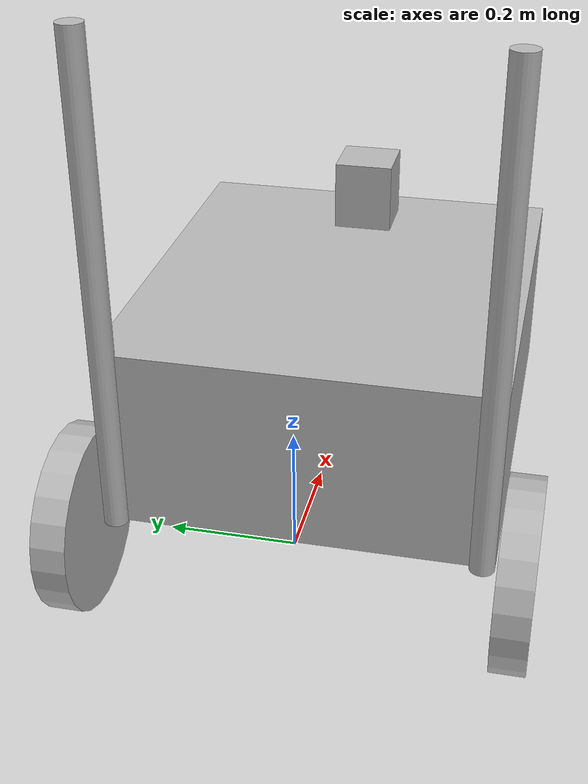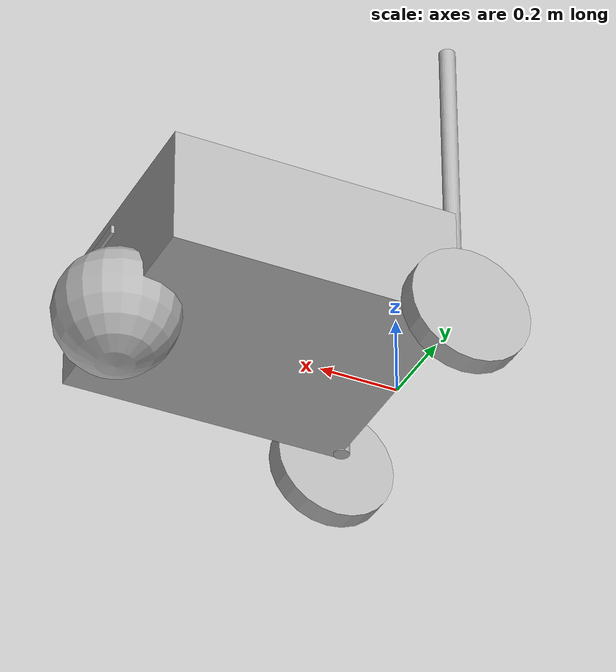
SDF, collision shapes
<?xml version='1.0'?>
<sdf version='1.7'>
  <model name='blindenhund'>
    <link name='base_footprint'>
      <self_collide>0</self_collide>
      <inertial>
        <pose>0 0 0 0 -0 0</pose>
        <inertia>
          <ixx>1</ixx>
          <ixy>0</ixy>
          <ixz>0</ixz>
          <iyy>1</iyy>
          <iyz>0</iyz>
          <izz>1</izz>
        </inertia>
        <mass>0</mass>
      </inertial>
      <enable_wind>0</enable_wind>
      <kinematic>0</kinematic>
      <pose>0 0 0 0 -0 0</pose>
      <gravity>1</gravity>
    </link>

    <link name='base_link'>
      <inertial>
        <pose>0.3576 0 0.3024 0 0 0</pose>
        <mass>8</mass>
        <inertia>
          <ixx>0.01</ixx>
          <ixy>0</ixy>
          <ixz>0</ixz>
          <iyy>0.1</iyy>
          <iyz>0</iyz>
          <izz>0.1</izz>
        </inertia>
      </inertial>
      <self_collide>0</self_collide>
      <enable_wind>0</enable_wind>
      <kinematic>0</kinematic>
      <pose>0.3576 0 0.1524 0 -0 0</pose>
      <gravity>1</gravity>
      <visual name='base_visual'>
        <geometry>
          <box>
            <size>0.7152 0.628 0.30</size>
          </box>
        </geometry>
      </visual>
      <collision name='base_collision'>
        <max_contacts>10</max_contacts>
        <pose>0 0 0 0 0 0</pose>
        <geometry>
          <box>
            <size>0.7152 0.628 0.30</size>
          </box>
        </geometry>
      </collision>
    </link>

   <link name='left_wheel'>
      <inertial>
        <pose>0 0.3493 0 -1.5707 0 0</pose>
        <mass>0.5</mass>
        <inertia>
          <ixx>0.145833</ixx>
          <ixy>0</ixy>
          <ixz>0</ixz>
          <iyy>0.145833</iyy>
          <iyz>0</iyz>
          <izz>0.125</izz>
        </inertia>
      </inertial>
      <self_collide>0</self_collide>
      <enable_wind>0</enable_wind>
      <kinematic>0</kinematic>
      <pose>0 0 0 0 0 0</pose>
      <visual name='visual'>
        <pose>0 0.3493 0 -1.5707 0 0</pose>
        <geometry>
          <cylinder>
            <radius>0.1524</radius>
            <length>0.056</length>
          </cylinder>
        </geometry>
      </visual>
      <collision name='collision'>
        <pose>0 0.3493 0 -1.5707 0 0</pose>
        <max_contacts>10</max_contacts>
        <geometry>
          <cylinder>
            <radius>0.1524</radius>
            <length>0.056</length>
          </cylinder>
        </geometry>
        <surface>
          <friction>
            <ode>
              <mu>1</mu>
              <mu2>1</mu2>
              <slip1>0</slip1>
              <slip2>0</slip2>
            </ode>
          </friction>
          <contact>
            <ode>
              <soft_cfm>0</soft_cfm>
              <soft_erp>0.2</soft_erp>
              <kp>1e+13</kp>
              <kd>1</kd>
              <max_vel>0.01</max_vel>
              <min_depth>0.01</min_depth>
            </ode>
          </contact>
        </surface>
      </collision>
    </link>

    <link name='right_wheel'>
      <inertial>
        <pose>0 -0.3493 0 -1.5707 0 0</pose>
        <mass>0.5</mass>
        <inertia>
          <ixx>0.145833</ixx>
          <ixy>0</ixy>
          <ixz>0</ixz>
          <iyy>0.145833</iyy>
          <iyz>0</iyz>
          <izz>0.125</izz>
        </inertia>
      </inertial>
      <self_collide>0</self_collide>
      <enable_wind>0</enable_wind>
      <kinematic>0</kinematic>
      <pose>0 0 0 0 -0 0</pose>
      <visual name='visual'>
        <pose>0 -0.3493 0 -1.5707 0 0</pose>
        <geometry>
          <cylinder>
            <radius>0.1524</radius>
            <length>0.056</length>
          </cylinder>
        </geometry>
      </visual>
      <collision name='collision'>
        <pose>0 -0.3493 0 -1.5707 0 0</pose>
        <max_contacts>10</max_contacts>
        <geometry>
          <cylinder>
            <radius>0.1524</radius>
            <length>0.056</length>
          </cylinder>
        </geometry>
        <surface>
          <friction>
            <ode>
              <mu>1</mu>
              <mu2>1</mu2>
              <slip1>0</slip1>
              <slip2>0</slip2>
            </ode>
          </friction>
          <contact>
            <ode>
              <soft_cfm>0</soft_cfm>
              <soft_erp>0.2</soft_erp>
              <kp>1e+13</kp>
              <kd>1</kd>
              <max_vel>0.01</max_vel>
              <min_depth>0.01</min_depth>
            </ode>
          </contact>
        </surface>
      </collision>
    </link>

    <link name='left_grip'>
      <pose>0 0.294 0.3988 0 0 0</pose>
      <inertial>
        <mass>0.2</mass>
        <inertia>
          <ixx>0.145833</ixx>
          <ixy>0</ixy>
          <ixz>0</ixz>
          <iyy>0.145833</iyy>
          <iyz>0</iyz>
          <izz>0.125</izz>
        </inertia>
        <pose>0 0 0 0 -0 0</pose>
      </inertial>
      <visual name='visual'>
        <geometry>
          <cylinder>
            <radius>0.02</radius>
            <length>0.7976</length>
          </cylinder>
        </geometry>
        <pose>0 0 0 0 -0 0</pose>
      </visual>
      <collision name='collision'>
        <max_contacts>10</max_contacts>
        <pose>0 0 0 0 -0 0</pose>
        <geometry>
          <cylinder>
            <radius>0.02</radius>
            <length>0.7976</length>
          </cylinder>
        </geometry>
      </collision>
    </link>

    <link name='right_grip'>
      <pose>0 -0.294 0.3988 0 0 0</pose>
      <inertial>
        <mass>0.2</mass>
        <inertia>
          <ixx>0.145833</ixx>
          <ixy>0</ixy>
          <ixz>0</ixz>
          <iyy>0.145833</iyy>
          <iyz>0</iyz>
          <izz>0.125</izz>
        </inertia>
        <pose>0 0 0 0 -0 0</pose>
      </inertial>
      <visual name='visual'>
        <geometry>
          <cylinder>
            <radius>0.02</radius>
            <length>0.7976</length>
          </cylinder>
        </geometry>
        <pose>0 0 0 0 -0 0</pose>
      </visual>
      <collision name='collision'>
        <max_contacts>10</max_contacts>
        <pose>0 0 0 0 -0 0</pose>
        <geometry>
          <cylinder>
            <radius>0.02</radius>
            <length>0.7976</length>
          </cylinder>
        </geometry>
      </collision>
    </link>

    <link name='imu_link'>
      <sensor name='tb3_imu' type='imu'>
        <always_on>true</always_on>
        <update_rate>200</update_rate>
        <imu>
          <angular_velocity>
            <x>
              <noise type='gaussian'>
                <mean>0.0</mean>
                <stddev>2e-4</stddev>
              </noise>
            </x>
            <y>
              <noise type='gaussian'>
                <mean>0.0</mean>
                <stddev>2e-4</stddev>
              </noise>
            </y>
            <z>
              <noise type='gaussian'>
                <mean>0.0</mean>
                <stddev>2e-4</stddev>
              </noise>
            </z>
          </angular_velocity>
          <linear_acceleration>
            <x>
              <noise type='gaussian'>
                <mean>0.0</mean>
                <stddev>1.7e-2</stddev>
              </noise>
            </x>
            <y>
              <noise type='gaussian'>
                <mean>0.0</mean>
                <stddev>1.7e-2</stddev>
              </noise>
            </y>
            <z>
              <noise type='gaussian'>
                <mean>0.0</mean>
                <stddev>1.7e-2</stddev>
              </noise>
            </z>
          </linear_acceleration>
        </imu>
        <plugin name='blindenhund_imu' filename='libgazebo_ros_imu_sensor.so'>
          <ros>
            <remapping>~/out:=imu</remapping>
          </ros>
        </plugin>
      </sensor>
      <self_collide>0</self_collide>
      <inertial>
        <pose>0 0 0 0 -0 0</pose>
        <inertia>
          <ixx>1</ixx>
          <ixy>0</ixy>
          <ixz>0</ixz>
          <iyy>1</iyy>
          <iyz>0</iyz>
          <izz>1</izz>
        </inertia>
        <mass>0.001</mass>
      </inertial>
      <enable_wind>0</enable_wind>
      <kinematic>0</kinematic>
      <pose>0 0 0 0 -0 0</pose>
    </link>

    <link name='caster'>
      <pose>0.7152 0 0 0 0 0</pose>
      <inertial>
        <mass>2</mass>
        <inertia>
          <ixx>0.1</ixx>
          <ixy>0</ixy>
          <ixz>0</ixz>
          <iyy>0.1</iyy>
          <iyz>0</iyz>
          <izz>0.1</izz>
        </inertia>
        <pose>0 0 0 0 -0 0</pose>
      </inertial>
      <visual name='visual'>
        <geometry>
          <sphere>
            <radius>0.1524</radius>
          </sphere>
        </geometry>
        <pose>0 0 0 0 -0 0</pose>
      </visual>
      <collision name='collision'>
        <max_contacts>10</max_contacts>
        <pose>0 0 0 0 -0 0</pose>
        <geometry>
          <sphere>
            <radius>0.1524</radius>
          </sphere>
        </geometry>
        <surface>
          <contact>
            <ode>
              <soft_cfm>0</soft_cfm>
              <soft_erp>0.2</soft_erp>
              <kp>1e+5</kp>
              <kd>1</kd>
              <max_vel>0.01</max_vel>
              <min_depth>0.001</min_depth>
            </ode>
          </contact>
        </surface>
      </collision>
    </link>

    <link name='camera_link'>
      <inertial>
        <pose>0.75 -0.065 0.2 0 -0 0</pose>
        <inertia>
          <ixx>0.001</ixx>
          <ixy>0.000</ixy>
          <ixz>0.000</ixz>
          <iyy>0.001</iyy>
          <iyz>0.000</iyz>
          <izz>0.001</izz>
        </inertia>
        <mass>0.035</mass>
      </inertial>
      <pose>0.75 -0.065 0.2 0 -0 0</pose>
      <sensor name='intel_realsense_r200_depth' type='depth'>
        <always_on>1</always_on>
        <update_rate>5</update_rate>
        <pose>0.064 -0.047 0.2 0 0 0</pose>
        <camera name='realsense_depth_camera'>
          <horizontal_fov>1.047</horizontal_fov>
          <image>
            <width>320</width>
            <height>240</height>
          </image>
          <clip>
            <near>0.1</near>
            <far>100</far>
          </clip>
        </camera>
        <plugin name='intel_realsense_r200_depth_driver' filename='libgazebo_ros_camera.so'>
          <ros>
          </ros>
          <camera_name>intel_realsense_r200_depth</camera_name>
          <frame_name>camera_depth_frame</frame_name>
          <hack_baseline>0.07</hack_baseline>
          <min_depth>0.001</min_depth>
          <max_depth>5.0</max_depth>
        </plugin>
      </sensor>
      <pose>0.069 -0.047 0.2 0 -0 0</pose>
      <self_collide>0</self_collide>
      <enable_wind>0</enable_wind>
      <kinematic>0</kinematic>
      <gravity>1</gravity>
      <collision name='collision'>
        <pose>0 0.047 -0.005 0 0 0</pose>
        <geometry>
          <box>
            <size>0.008 0.130 0.022</size>
          </box>
        </geometry>
      </collision>
      <pose>0.069 -0.047 0.2 0 0 0</pose>
    </link>

    <link name='base_scan'>
      <inertial>
        <pose>0.6 0 0.32 0 -0 0</pose>
        <mass>0.2</mass>
        <inertia>
          <ixx>0.001</ixx>
          <ixy>0</ixy>
          <ixz>0</ixz>
          <iyy>0.01</iyy>
          <iyz>0</iyz>
          <izz>0.01</izz>
        </inertia>
      </inertial>
      <visual name='lidar_sensor_visual'>
        <geometry>
          <mesh>
            <uri>model://blindenhund/meshes/lds.dae</uri>
            <scale>0.001 0.001 0.001</scale>
          </mesh>
        </geometry>
        <pose>0 0 0 0 -0 0</pose>
      </visual>
      <collision name='lidar_sensor_collision'>
        <max_contacts>10</max_contacts>
        <pose>0 0 0 0 -0 0</pose>
        <geometry>
          <box>
            <size>0.1 0.1 0.2</size>
          </box>
        </geometry>
      </collision>
<!-- ray sensor -->
      <sensor name='sick_tim5xx' type='ray'>
        <always_on>1</always_on>
        <visualize>1</visualize>
        <pose>0 0 0 0 0 0</pose>
        <update_rate>15</update_rate>
        <ray>
          <scan>
            <horizontal>
              <samples>810</samples>
              <resolution>0.33</resolution>
              <min_angle>-2.3562</min_angle>
              <max_angle>2.3562</max_angle>
            </horizontal>
            <vertical>
              <samples>1</samples>
              <min_angle>0</min_angle>
              <max_angle>0</max_angle>
            </vertical>
          </scan>
          <range>
            <min>0.05</min>
            <max>25</max>
            <resolution>0.06</resolution>
          </range>
          <noise>
            <type>gaussian</type>
            <mean>0.0</mean>
            <stddev>0.01</stddev>
          </noise>
        </ray>
        <plugin name='sick_laserscan' filename='libgazebo_ros_ray_sensor.so'>
          <ros>
            <remapping>~/out:=scan</remapping>
          </ros>
          <output_type>sensor_msgs/LaserScan</output_type>
          <frameName>base_scan</frameName>
        </plugin>
      </sensor>
      <self_collide>0</self_collide>
      <enable_wind>0</enable_wind>
      <kinematic>0</kinematic>
      <pose>0.6 -0 0.32 0 -0 0</pose>
      <gravity>1</gravity>
    </link>

    <joint name='base_joint' type='fixed'>
      <parent>base_footprint</parent>
      <child>base_link</child>
      <pose>0.0 0.0 0.0 0 0 0</pose>
    </joint>

    <joint name='left_grip_joint' type='fixed'>
      <parent>base_footprint</parent>
      <child>left_grip</child>
      <pose>0 0 0 0 -0 0</pose>
    </joint>

    <joint name='right_grip_joint' type='fixed'>
      <parent>base_link</parent>
      <child>right_grip</child>
      <pose>0 0 0 0 -0 0</pose>
    </joint>

    <joint name='left_wheel_joint' type='revolute'>
      <parent>base_link</parent>
      <child>left_wheel</child>
      <pose>0 0 0 0 0 0</pose>
      <axis>
        <xyz>0 0 1</xyz>
        <limit>
          <lower>-1e+16</lower>
          <upper>1e+16</upper>
          <effort>-1</effort>
          <velocity>-1</velocity>
        </limit>
        <dynamics>
          <spring_reference>0</spring_reference>
          <spring_stiffness>0</spring_stiffness>
          <damping>0</damping>
          <friction>0</friction>
        </dynamics>
      </axis>
    </joint>

    <joint name='right_wheel_joint' type='revolute'>
      <parent>base_link</parent>
      <child>right_wheel</child>
      <pose>0 0 0 0 0 0</pose>
      <axis>
        <xyz>0 0 1</xyz>
        <limit>
          <lower>-1e+16</lower>
          <upper>1e+16</upper>
          <effort>-1</effort>
          <velocity>-1</velocity>
        </limit>
        <dynamics>
          <spring_reference>0</spring_reference>
          <spring_stiffness>0</spring_stiffness>
          <damping>0</damping>
          <friction>0</friction>
        </dynamics>
      </axis>
    </joint>

    <joint name='caster_wheel' type='ball'>
      <parent>base_link</parent>
      <child>caster</child>
      <pose>0 0 0 0 -0 0</pose>
    </joint>

    <joint name='sensor_joint' type='fixed'>
      <parent>base_link</parent>
      <child>base_scan</child>
      <pose>-0.064 0 0.130 0 0 0</pose>
    </joint>

    <joint name='camera_joint' type='fixed'>
      <parent>base_link</parent>
      <child>camera_link</child>
      <pose>0.064 -0.065 0.094 0 0 0</pose>
    </joint>

    <joint name='camera_rgb_joint' type='fixed'>
      <parent>camera_link</parent>
      <child>camera_rgb_frame</child>
      <pose>0.005 0.018 0.013 0 0 0</pose>
      <axis>
        <xyz>0 0 1</xyz>
      </axis>
    </joint>

    <plugin name='diff_drive' filename='libgazebo_ros_diff_drive.so'>

      <ros>
      </ros>

      <update_rate>30</update_rate>

      <!-- wheels -->
      <left_joint>left_wheel_joint</left_joint>
      <right_joint>right_wheel_joint</right_joint>

      <!-- kinematics -->
      <wheel_separation>0.648</wheel_separation>
      <wheel_diameter>0.3048</wheel_diameter>

      <!-- limits -->
      <max_wheel_torque>10</max_wheel_torque>
      <max_wheel_acceleration>0.5</max_wheel_acceleration>

      <command_topic>cmd_vel_nav2</command_topic>

      <!-- output -->
      <publish_odom>true</publish_odom>
      <publish_odom_tf>true</publish_odom_tf>
      <publish_wheel_tf>false</publish_wheel_tf>

      <odometry_topic>odom</odometry_topic>
      <odometry_frame>odom</odometry_frame>
      <robot_base_frame>base_footprint</robot_base_frame>

    </plugin>

    <plugin name='blindenhund_joint_state' filename='libgazebo_ros_joint_state_publisher.so'>
      <ros>
        <remapping>~/out:=joint_states</remapping>
      </ros>
      <update_rate>30</update_rate>
      <joint_name>left_wheel_joint</joint_name>
      <joint_name>right_wheel_joint</joint_name>
    </plugin>

  </model>
</sdf>
